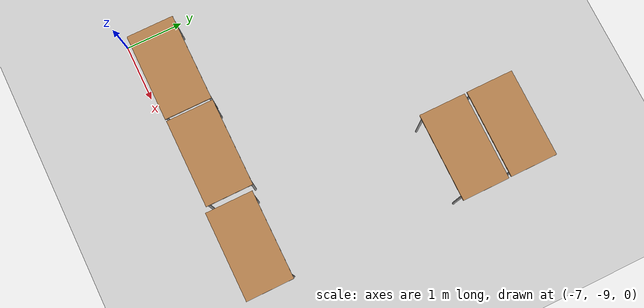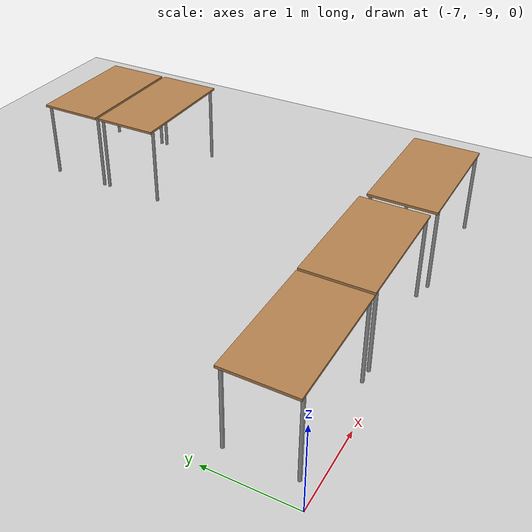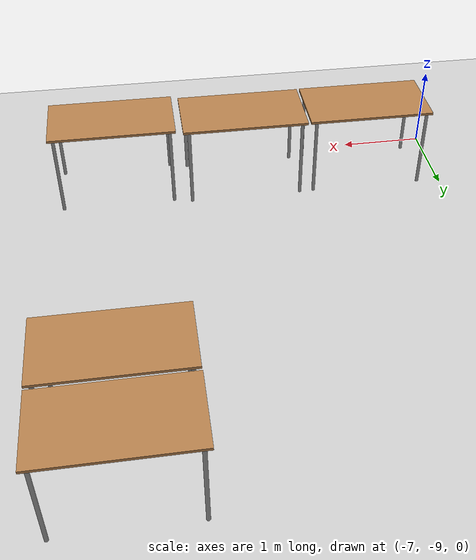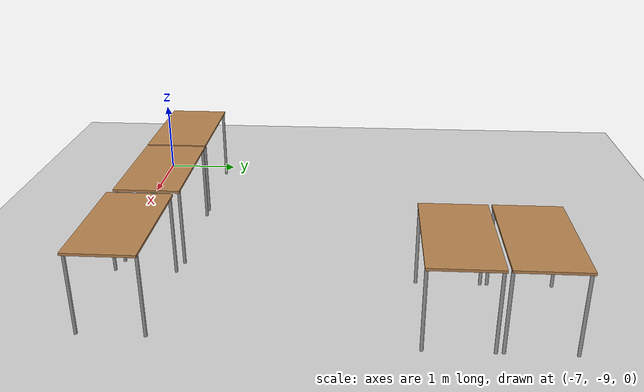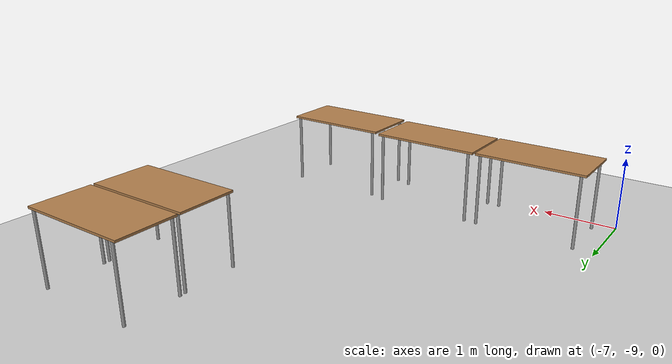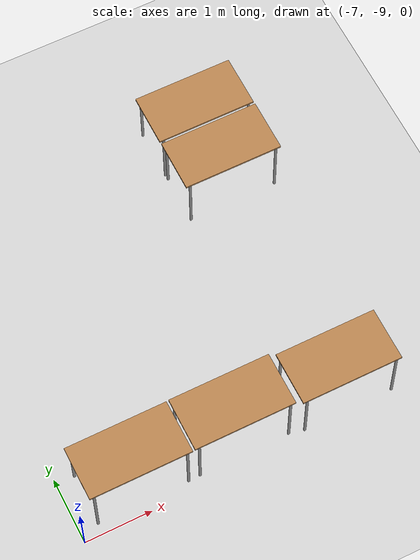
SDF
<sdf version="1.6">
 <world name="default">
  <model name="ground_plane">
   <static>1</static>
   <link name="link">
    <collision name="collision">
     <geometry><plane><normal>0 0 1</normal><size>100 100</size></plane></geometry>
     <surface>
      <contact><collide_bitmask>65535</collide_bitmask></contact>
      <friction><ode><mu>100</mu><mu2>50</mu2></ode></friction>
     </surface>
    </collision>
    <visual name="visual">
     <cast_shadows>0</cast_shadows>
     <geometry><plane><normal>0 0 1</normal><size>100 100</size></plane></geometry>
     <material>
      <script><uri>file://media/materials/scripts/gazebo.material</uri><name>Gazebo/Grey</name></script>
     </material>
    </visual>
   </link>
  </model>
  <model name="table_7">
   <static>1</static>
   <link name="link">
    <collision name="surface">
     <pose>0 0 1 0 -0 0</pose>
     <geometry><box><size>1.5 0.8 0.03</size></box></geometry>
     <surface><friction><ode><mu>0.6</mu><mu2>0.6</mu2></ode></friction></surface>
    </collision>
    <visual name="visual1">
     <pose>0 0 1 0 -0 0</pose>
     <geometry><box><size>1.5 0.8 0.03</size></box></geometry>
     <material>
      <script><uri>file://media/materials/scripts/gazebo.material</uri><name>Gazebo/Wood</name></script>
     </material>
    </visual>
    <collision name="front_left_leg">
     <pose>0.68 0.38 0.5 0 -0 0</pose>
     <geometry><cylinder><radius>0.02</radius><length>1</length></cylinder></geometry>
    </collision>
    <visual name="front_left_leg">
     <pose>0.68 0.38 0.5 0 -0 0</pose>
     <geometry><cylinder><radius>0.02</radius><length>1</length></cylinder></geometry>
     <material>
      <script><uri>file://media/materials/scripts/gazebo.material</uri><name>Gazebo/Grey</name></script>
     </material>
    </visual>
    <collision name="front_right_leg">
     <pose>0.68 -0.38 0.5 0 -0 0</pose>
     <geometry><cylinder><radius>0.02</radius><length>1</length></cylinder></geometry>
    </collision>
    <visual name="front_right_leg">
     <pose>0.68 -0.38 0.5 0 -0 0</pose>
     <geometry><cylinder><radius>0.02</radius><length>1</length></cylinder></geometry>
     <material>
      <script><uri>file://media/materials/scripts/gazebo.material</uri><name>Gazebo/Grey</name></script>
     </material>
    </visual>
    <collision name="back_right_leg">
     <pose>-0.68 -0.38 0.5 0 -0 0</pose>
     <geometry><cylinder><radius>0.02</radius><length>1</length></cylinder></geometry>
    </collision>
    <visual name="back_right_leg">
     <pose>-0.68 -0.38 0.5 0 -0 0</pose>
     <geometry><cylinder><radius>0.02</radius><length>1</length></cylinder></geometry>
     <material>
      <script><uri>file://media/materials/scripts/gazebo.material</uri><name>Gazebo/Grey</name></script>
     </material>
    </visual>
    <collision name="back_left_leg">
     <pose>-0.68 0.38 0.5 0 -0 0</pose>
     <geometry><cylinder><radius>0.02</radius><length>1</length></cylinder></geometry>
    </collision>
    <visual name="back_left_leg">
     <pose>-0.68 0.38 0.5 0 -0 0</pose>
     <geometry><cylinder><radius>0.02</radius><length>1</length></cylinder></geometry>
     <material>
      <script><uri>file://media/materials/scripts/gazebo.material</uri><name>Gazebo/Grey</name></script>
     </material>
    </visual>
   </link>
   <pose>-2.92424 -8.49258 0 0 -0 0</pose>
  </model>
  <model name="table_8">
   <static>1</static>
   <link name="link">
    <collision name="surface">
     <pose>0 0 1 0 -0 0</pose>
     <geometry><box><size>1.5 0.8 0.03</size></box></geometry>
     <surface><friction><ode><mu>0.6</mu><mu2>0.6</mu2></ode></friction></surface>
    </collision>
    <visual name="visual1">
     <pose>0 0 1 0 -0 0</pose>
     <geometry><box><size>1.5 0.8 0.03</size></box></geometry>
     <material>
      <script><uri>file://media/materials/scripts/gazebo.material</uri><name>Gazebo/Wood</name></script>
     </material>
    </visual>
    <collision name="front_left_leg">
     <pose>0.68 0.38 0.5 0 -0 0</pose>
     <geometry><cylinder><radius>0.02</radius><length>1</length></cylinder></geometry>
    </collision>
    <visual name="front_left_leg">
     <pose>0.68 0.38 0.5 0 -0 0</pose>
     <geometry><cylinder><radius>0.02</radius><length>1</length></cylinder></geometry>
     <material>
      <script><uri>file://media/materials/scripts/gazebo.material</uri><name>Gazebo/Grey</name></script>
     </material>
    </visual>
    <collision name="front_right_leg">
     <pose>0.68 -0.38 0.5 0 -0 0</pose>
     <geometry><cylinder><radius>0.02</radius><length>1</length></cylinder></geometry>
    </collision>
    <visual name="front_right_leg">
     <pose>0.68 -0.38 0.5 0 -0 0</pose>
     <geometry><cylinder><radius>0.02</radius><length>1</length></cylinder></geometry>
     <material>
      <script><uri>file://media/materials/scripts/gazebo.material</uri><name>Gazebo/Grey</name></script>
     </material>
    </visual>
    <collision name="back_right_leg">
     <pose>-0.68 -0.38 0.5 0 -0 0</pose>
     <geometry><cylinder><radius>0.02</radius><length>1</length></cylinder></geometry>
    </collision>
    <visual name="back_right_leg">
     <pose>-0.68 -0.38 0.5 0 -0 0</pose>
     <geometry><cylinder><radius>0.02</radius><length>1</length></cylinder></geometry>
     <material>
      <script><uri>file://media/materials/scripts/gazebo.material</uri><name>Gazebo/Grey</name></script>
     </material>
    </visual>
    <collision name="back_left_leg">
     <pose>-0.68 0.38 0.5 0 -0 0</pose>
     <geometry><cylinder><radius>0.02</radius><length>1</length></cylinder></geometry>
    </collision>
    <visual name="back_left_leg">
     <pose>-0.68 0.38 0.5 0 -0 0</pose>
     <geometry><cylinder><radius>0.02</radius><length>1</length></cylinder></geometry>
     <material>
      <script><uri>file://media/materials/scripts/gazebo.material</uri><name>Gazebo/Grey</name></script>
     </material>
    </visual>
   </link>
   <pose>-4.50753 -8.4409 0 0 -0 0</pose>
  </model>
  <model name="table_11">
   <static>1</static>
   <link name="link">
    <collision name="surface">
     <pose>0 0 1 0 -0 0</pose>
     <geometry><box><size>1.5 0.8 0.03</size></box></geometry>
     <surface><friction><ode><mu>0.6</mu><mu2>0.6</mu2></ode></friction></surface>
    </collision>
    <visual name="visual1">
     <pose>0 0 1 0 -0 0</pose>
     <geometry><box><size>1.5 0.8 0.03</size></box></geometry>
     <material>
      <script><uri>file://media/materials/scripts/gazebo.material</uri><name>Gazebo/Wood</name></script>
     </material>
    </visual>
    <collision name="front_left_leg">
     <pose>0.68 0.38 0.5 0 -0 0</pose>
     <geometry><cylinder><radius>0.02</radius><length>1</length></cylinder></geometry>
    </collision>
    <visual name="front_left_leg">
     <pose>0.68 0.38 0.5 0 -0 0</pose>
     <geometry><cylinder><radius>0.02</radius><length>1</length></cylinder></geometry>
     <material>
      <script><uri>file://media/materials/scripts/gazebo.material</uri><name>Gazebo/Grey</name></script>
     </material>
    </visual>
    <collision name="front_right_leg">
     <pose>0.68 -0.38 0.5 0 -0 0</pose>
     <geometry><cylinder><radius>0.02</radius><length>1</length></cylinder></geometry>
    </collision>
    <visual name="front_right_leg">
     <pose>0.68 -0.38 0.5 0 -0 0</pose>
     <geometry><cylinder><radius>0.02</radius><length>1</length></cylinder></geometry>
     <material>
      <script><uri>file://media/materials/scripts/gazebo.material</uri><name>Gazebo/Grey</name></script>
     </material>
    </visual>
    <collision name="back_right_leg">
     <pose>-0.68 -0.38 0.5 0 -0 0</pose>
     <geometry><cylinder><radius>0.02</radius><length>1</length></cylinder></geometry>
    </collision>
    <visual name="back_right_leg">
     <pose>-0.68 -0.38 0.5 0 -0 0</pose>
     <geometry><cylinder><radius>0.02</radius><length>1</length></cylinder></geometry>
     <material>
      <script><uri>file://media/materials/scripts/gazebo.material</uri><name>Gazebo/Grey</name></script>
     </material>
    </visual>
    <collision name="back_left_leg">
     <pose>-0.68 0.38 0.5 0 -0 0</pose>
     <geometry><cylinder><radius>0.02</radius><length>1</length></cylinder></geometry>
    </collision>
    <visual name="back_left_leg">
     <pose>-0.68 0.38 0.5 0 -0 0</pose>
     <geometry><cylinder><radius>0.02</radius><length>1</length></cylinder></geometry>
     <material>
      <script><uri>file://media/materials/scripts/gazebo.material</uri><name>Gazebo/Grey</name></script>
     </material>
    </visual>
   </link>
   <pose>-2.8522 -4.82056 0 0 -0 0</pose>
  </model>
  <model name="table_12">
   <static>1</static>
   <link name="link">
    <collision name="surface">
     <pose>0 0 1 0 -0 0</pose>
     <geometry><box><size>1.5 0.8 0.03</size></box></geometry>
     <surface><friction><ode><mu>0.6</mu><mu2>0.6</mu2></ode></friction></surface>
    </collision>
    <visual name="visual1">
     <pose>0 0 1 0 -0 0</pose>
     <geometry><box><size>1.5 0.8 0.03</size></box></geometry>
     <material>
      <script><uri>file://media/materials/scripts/gazebo.material</uri><name>Gazebo/Wood</name></script>
     </material>
    </visual>
    <collision name="front_left_leg">
     <pose>0.68 0.38 0.5 0 -0 0</pose>
     <geometry><cylinder><radius>0.02</radius><length>1</length></cylinder></geometry>
    </collision>
    <visual name="front_left_leg">
     <pose>0.68 0.38 0.5 0 -0 0</pose>
     <geometry><cylinder><radius>0.02</radius><length>1</length></cylinder></geometry>
     <material>
      <script><uri>file://media/materials/scripts/gazebo.material</uri><name>Gazebo/Grey</name></script>
     </material>
    </visual>
    <collision name="front_right_leg">
     <pose>0.68 -0.38 0.5 0 -0 0</pose>
     <geometry><cylinder><radius>0.02</radius><length>1</length></cylinder></geometry>
    </collision>
    <visual name="front_right_leg">
     <pose>0.68 -0.38 0.5 0 -0 0</pose>
     <geometry><cylinder><radius>0.02</radius><length>1</length></cylinder></geometry>
     <material>
      <script><uri>file://media/materials/scripts/gazebo.material</uri><name>Gazebo/Grey</name></script>
     </material>
    </visual>
    <collision name="back_right_leg">
     <pose>-0.68 -0.38 0.5 0 -0 0</pose>
     <geometry><cylinder><radius>0.02</radius><length>1</length></cylinder></geometry>
    </collision>
    <visual name="back_right_leg">
     <pose>-0.68 -0.38 0.5 0 -0 0</pose>
     <geometry><cylinder><radius>0.02</radius><length>1</length></cylinder></geometry>
     <material>
      <script><uri>file://media/materials/scripts/gazebo.material</uri><name>Gazebo/Grey</name></script>
     </material>
    </visual>
    <collision name="back_left_leg">
     <pose>-0.68 0.38 0.5 0 -0 0</pose>
     <geometry><cylinder><radius>0.02</radius><length>1</length></cylinder></geometry>
    </collision>
    <visual name="back_left_leg">
     <pose>-0.68 0.38 0.5 0 -0 0</pose>
     <geometry><cylinder><radius>0.02</radius><length>1</length></cylinder></geometry>
     <material>
      <script><uri>file://media/materials/scripts/gazebo.material</uri><name>Gazebo/Grey</name></script>
     </material>
    </visual>
   </link>
   <pose>-2.85737 -3.97832 0 0 -0 0</pose>
  </model>
  <model name="table_13">
   <static>1</static>
   <link name="link">
    <collision name="surface">
     <pose>0 0 1 0 -0 0</pose>
     <geometry><box><size>1.5 0.8 0.03</size></box></geometry>
     <surface><friction><ode><mu>0.6</mu><mu2>0.6</mu2></ode></friction></surface>
    </collision>
    <visual name="visual1">
     <pose>0 0 1 0 -0 0</pose>
     <geometry><box><size>1.5 0.8 0.03</size></box></geometry>
     <material>
      <script><uri>file://media/materials/scripts/gazebo.material</uri><name>Gazebo/Wood</name></script>
     </material>
    </visual>
    <collision name="front_left_leg">
     <pose>0.68 0.38 0.5 0 -0 0</pose>
     <geometry><cylinder><radius>0.02</radius><length>1</length></cylinder></geometry>
    </collision>
    <visual name="front_left_leg">
     <pose>0.68 0.38 0.5 0 -0 0</pose>
     <geometry><cylinder><radius>0.02</radius><length>1</length></cylinder></geometry>
     <material>
      <script><uri>file://media/materials/scripts/gazebo.material</uri><name>Gazebo/Grey</name></script>
     </material>
    </visual>
    <collision name="front_right_leg">
     <pose>0.68 -0.38 0.5 0 -0 0</pose>
     <geometry><cylinder><radius>0.02</radius><length>1</length></cylinder></geometry>
    </collision>
    <visual name="front_right_leg">
     <pose>0.68 -0.38 0.5 0 -0 0</pose>
     <geometry><cylinder><radius>0.02</radius><length>1</length></cylinder></geometry>
     <material>
      <script><uri>file://media/materials/scripts/gazebo.material</uri><name>Gazebo/Grey</name></script>
     </material>
    </visual>
    <collision name="back_right_leg">
     <pose>-0.68 -0.38 0.5 0 -0 0</pose>
     <geometry><cylinder><radius>0.02</radius><length>1</length></cylinder></geometry>
    </collision>
    <visual name="back_right_leg">
     <pose>-0.68 -0.38 0.5 0 -0 0</pose>
     <geometry><cylinder><radius>0.02</radius><length>1</length></cylinder></geometry>
     <material>
      <script><uri>file://media/materials/scripts/gazebo.material</uri><name>Gazebo/Grey</name></script>
     </material>
    </visual>
    <collision name="back_left_leg">
     <pose>-0.68 0.38 0.5 0 -0 0</pose>
     <geometry><cylinder><radius>0.02</radius><length>1</length></cylinder></geometry>
    </collision>
    <visual name="back_left_leg">
     <pose>-0.68 0.38 0.5 0 -0 0</pose>
     <geometry><cylinder><radius>0.02</radius><length>1</length></cylinder></geometry>
     <material>
      <script><uri>file://media/materials/scripts/gazebo.material</uri><name>Gazebo/Grey</name></script>
     </material>
    </visual>
   </link>
   <pose>-6.04338 -8.44713 0 0 -0 0</pose>
  </model>
 </world>
</sdf>
